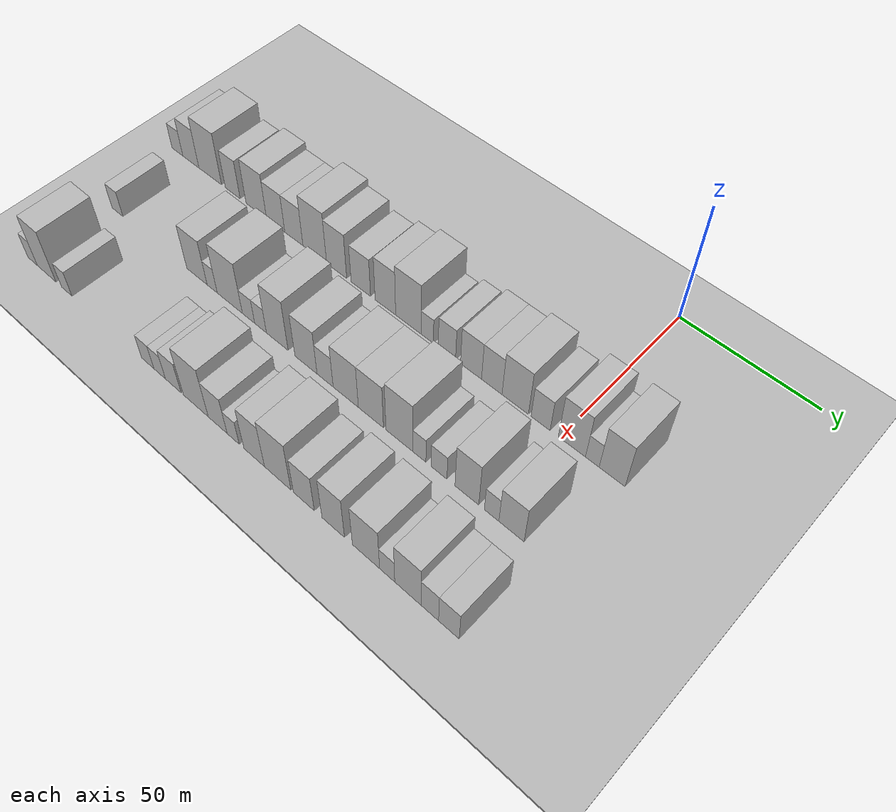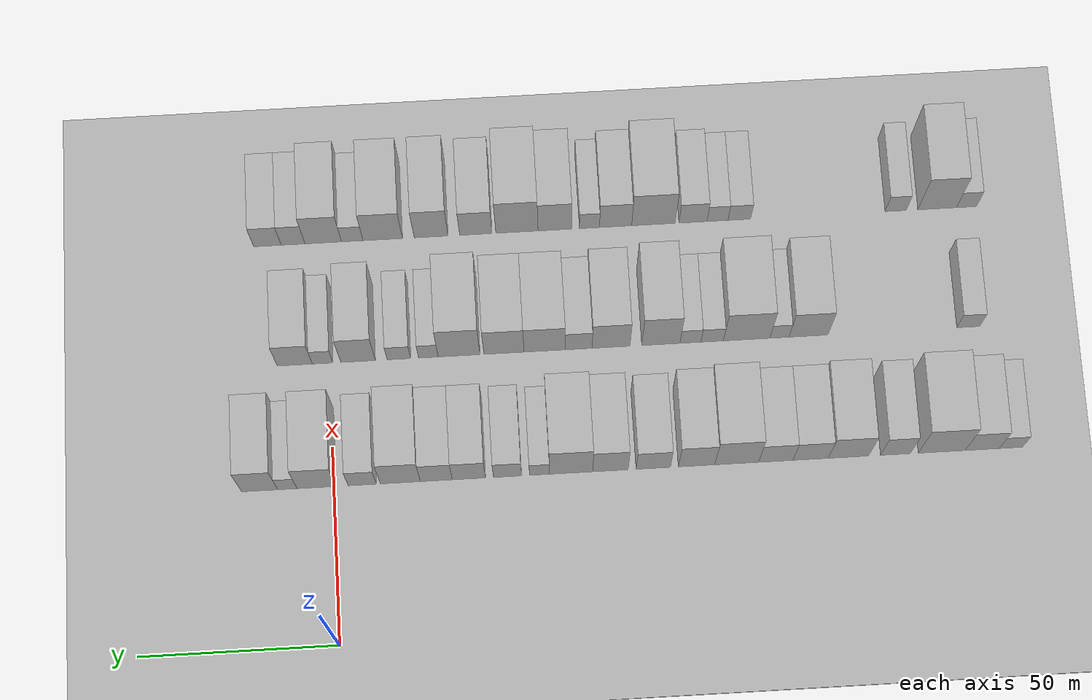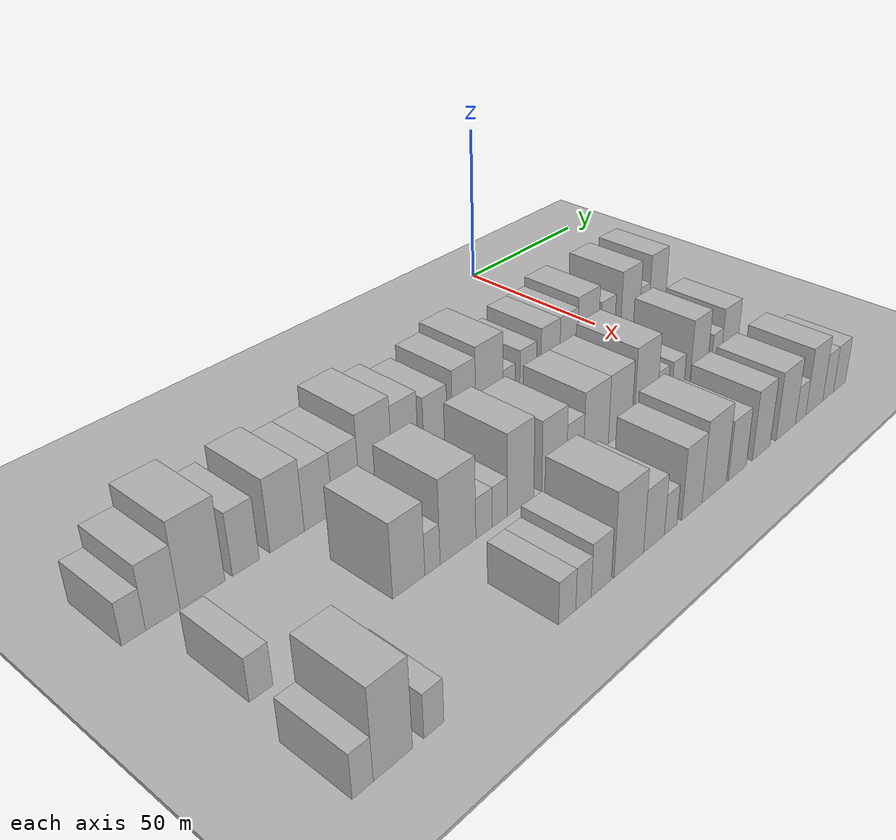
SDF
<sdf version="1.6">
 <world name="default">
  <include><name>ground_plane_1</name><uri>model://HANNAS_ground_plane</uri></include>
  <include>
   <name>ground_plane_2</name>
   <uri>model://HANNAS_ground_plane</uri>
   <pose>100 0 0  0 0 0</pose>
  </include>
  <model name="building_17">
   <static>1</static>
   <pose>50.0000 -170.2554 0 0.000000 0.000000 0.000000</pose>
   <link name="link">
    <pose>0 0 6.00 0 0 0</pose>
    <collision name="collision"><geometry><box><size>20.0000 5.8816 12.0000</size></box></geometry></collision>
    <visual name="visual">
     <cast_shadows>0</cast_shadows>
     <geometry><box><size>20.0000 5.8816 12.0000</size></box></geometry>
     <material>
      <script>
       <uri>model://HANNAS_wall/materials/scripts</uri>
       <uri>model://HANNAS_wall/materials/textures</uri>
       <name>vrc/HANNAS_wall</name>
      </script>
     </material>
    </visual>
   </link>
  </model>
  <model name="building_18">
   <static>1</static>
   <pose>50.0000 -163.0106 0 0.000000 0.000000 0.000000</pose>
   <link name="link">
    <pose>0 0 9.00 0 0 0</pose>
    <collision name="collision"><geometry><box><size>20.0000 8.6079 18.0000</size></box></geometry></collision>
    <visual name="visual">
     <cast_shadows>0</cast_shadows>
     <geometry><box><size>20.0000 8.6079 18.0000</size></box></geometry>
     <material>
      <script>
       <uri>model://HANNAS_wall/materials/scripts</uri>
       <uri>model://HANNAS_wall/materials/textures</uri>
       <name>vrc/HANNAS_wall</name>
      </script>
     </material>
    </visual>
   </link>
  </model>
  <model name="building_19">
   <static>1</static>
   <pose>50.0000 -152.7839 0 0.000000 0.000000 0.000000</pose>
   <link name="link">
    <pose>0 0 12.00 0 0 0</pose>
    <collision name="collision"><geometry><box><size>20.0000 11.8455 24.0000</size></box></geometry></collision>
    <visual name="visual">
     <cast_shadows>0</cast_shadows>
     <geometry><box><size>20.0000 11.8455 24.0000</size></box></geometry>
     <material>
      <script>
       <uri>model://HANNAS_wall/materials/scripts</uri>
       <uri>model://HANNAS_wall/materials/textures</uri>
       <name>vrc/HANNAS_wall</name>
      </script>
     </material>
    </visual>
   </link>
  </model>
  <model name="building_20">
   <static>1</static>
   <pose>50.0000 -141.0878 0 0.000000 0.000000 0.000000</pose>
   <link name="link">
    <pose>0 0 9.00 0 0 0</pose>
    <collision name="collision"><geometry><box><size>20.0000 7.5467 18.0000</size></box></geometry></collision>
    <visual name="visual">
     <cast_shadows>0</cast_shadows>
     <geometry><box><size>20.0000 7.5467 18.0000</size></box></geometry>
     <material>
      <script>
       <uri>model://HANNAS_wall/materials/scripts</uri>
       <uri>model://HANNAS_wall/materials/textures</uri>
       <name>vrc/HANNAS_wall</name>
      </script>
     </material>
    </visual>
   </link>
  </model>
  <model name="building_21">
   <static>1</static>
   <pose>50.0000 -129.2175 0 0.000000 0.000000 0.000000</pose>
   <link name="link">
    <pose>0 0 10.50 0 0 0</pose>
    <collision name="collision"><geometry><box><size>20.0000 10.1940 21.0000</size></box></geometry></collision>
    <visual name="visual">
     <cast_shadows>0</cast_shadows>
     <geometry><box><size>20.0000 10.1940 21.0000</size></box></geometry>
     <material>
      <script>
       <uri>model://HANNAS_wall/materials/scripts</uri>
       <uri>model://HANNAS_wall/materials/textures</uri>
       <name>vrc/HANNAS_wall</name>
      </script>
     </material>
    </visual>
   </link>
  </model>
  <model name="building_22">
   <static>1</static>
   <pose>50.0000 -119.6729 0 0.000000 0.000000 0.000000</pose>
   <link name="link">
    <pose>0 0 9.00 0 0 0</pose>
    <collision name="collision"><geometry><box><size>20.0000 8.8952 18.0000</size></box></geometry></collision>
    <visual name="visual">
     <cast_shadows>0</cast_shadows>
     <geometry><box><size>20.0000 8.8952 18.0000</size></box></geometry>
     <material>
      <script>
       <uri>model://HANNAS_wall/materials/scripts</uri>
       <uri>model://HANNAS_wall/materials/textures</uri>
       <name>vrc/HANNAS_wall</name>
      </script>
     </material>
    </visual>
   </link>
  </model>
  <model name="building_23">
   <static>1</static>
   <pose>50.0000 -110.8884 0 0.000000 0.000000 0.000000</pose>
   <link name="link">
    <pose>0 0 9.00 0 0 0</pose>
    <collision name="collision"><geometry><box><size>20.0000 8.6737 18.0000</size></box></geometry></collision>
    <visual name="visual">
     <cast_shadows>0</cast_shadows>
     <geometry><box><size>20.0000 8.6737 18.0000</size></box></geometry>
     <material>
      <script>
       <uri>model://HANNAS_wall/materials/scripts</uri>
       <uri>model://HANNAS_wall/materials/textures</uri>
       <name>vrc/HANNAS_wall</name>
      </script>
     </material>
    </visual>
   </link>
  </model>
  <model name="building_24">
   <static>1</static>
   <pose>50.0000 -101.0242 0 0.000000 0.000000 0.000000</pose>
   <link name="link">
    <pose>0 0 12.00 0 0 0</pose>
    <collision name="collision"><geometry><box><size>20.0000 11.0546 24.0000</size></box></geometry></collision>
    <visual name="visual">
     <cast_shadows>0</cast_shadows>
     <geometry><box><size>20.0000 11.0546 24.0000</size></box></geometry>
     <material>
      <script>
       <uri>model://HANNAS_wall/materials/scripts</uri>
       <uri>model://HANNAS_wall/materials/textures</uri>
       <name>vrc/HANNAS_wall</name>
      </script>
     </material>
    </visual>
   </link>
  </model>
  <model name="building_25">
   <static>1</static>
   <pose>50.0000 -90.9319 0 0.000000 0.000000 0.000000</pose>
   <link name="link">
    <pose>0 0 10.50 0 0 0</pose>
    <collision name="collision"><geometry><box><size>20.0000 9.1301 21.0000</size></box></geometry></collision>
    <visual name="visual">
     <cast_shadows>0</cast_shadows>
     <geometry><box><size>20.0000 9.1301 21.0000</size></box></geometry>
     <material>
      <script>
       <uri>model://HANNAS_wall/materials/scripts</uri>
       <uri>model://HANNAS_wall/materials/textures</uri>
       <name>vrc/HANNAS_wall</name>
      </script>
     </material>
    </visual>
   </link>
  </model>
  <model name="building_26">
   <static>1</static>
   <pose>50.0000 -80.0476 0 0.000000 0.000000 0.000000</pose>
   <link name="link">
    <pose>0 0 9.00 0 0 0</pose>
    <collision name="collision"><geometry><box><size>20.0000 8.6386 18.0000</size></box></geometry></collision>
    <visual name="visual">
     <cast_shadows>0</cast_shadows>
     <geometry><box><size>20.0000 8.6386 18.0000</size></box></geometry>
     <material>
      <script>
       <uri>model://HANNAS_wall/materials/scripts</uri>
       <uri>model://HANNAS_wall/materials/textures</uri>
       <name>vrc/HANNAS_wall</name>
      </script>
     </material>
    </visual>
   </link>
  </model>
  <model name="building_27">
   <static>1</static>
   <pose>50.0000 -69.2819 0 0.000000 0.000000 0.000000</pose>
   <link name="link">
    <pose>0 0 10.50 0 0 0</pose>
    <collision name="collision"><geometry><box><size>20.0000 8.8927 21.0000</size></box></geometry></collision>
    <visual name="visual">
     <cast_shadows>0</cast_shadows>
     <geometry><box><size>20.0000 8.8927 21.0000</size></box></geometry>
     <material>
      <script>
       <uri>model://HANNAS_wall/materials/scripts</uri>
       <uri>model://HANNAS_wall/materials/textures</uri>
       <name>vrc/HANNAS_wall</name>
      </script>
     </material>
    </visual>
   </link>
  </model>
  <model name="building_28">
   <static>1</static>
   <pose>50.0000 -59.4083 0 0.000000 0.000000 0.000000</pose>
   <link name="link">
    <pose>0 0 12.00 0 0 0</pose>
    <collision name="collision"><geometry><box><size>20.0000 10.8546 24.0000</size></box></geometry></collision>
    <visual name="visual">
     <cast_shadows>0</cast_shadows>
     <geometry><box><size>20.0000 10.8546 24.0000</size></box></geometry>
     <material>
      <script>
       <uri>model://HANNAS_wall/materials/scripts</uri>
       <uri>model://HANNAS_wall/materials/textures</uri>
       <name>vrc/HANNAS_wall</name>
      </script>
     </material>
    </visual>
   </link>
  </model>
  <model name="building_29">
   <static>1</static>
   <pose>50.0000 -51.4689 0 0.000000 0.000000 0.000000</pose>
   <link name="link">
    <pose>0 0 6.00 0 0 0</pose>
    <collision name="collision"><geometry><box><size>20.0000 5.0243 12.0000</size></box></geometry></collision>
    <visual name="visual">
     <cast_shadows>0</cast_shadows>
     <geometry><box><size>20.0000 5.0243 12.0000</size></box></geometry>
     <material>
      <script>
       <uri>model://HANNAS_wall/materials/scripts</uri>
       <uri>model://HANNAS_wall/materials/textures</uri>
       <name>vrc/HANNAS_wall</name>
      </script>
     </material>
    </visual>
   </link>
  </model>
  <model name="building_30">
   <static>1</static>
   <pose>50.0000 -43.4374 0 0.000000 0.000000 0.000000</pose>
   <link name="link">
    <pose>0 0 7.50 0 0 0</pose>
    <collision name="collision"><geometry><box><size>20.0000 7.0387 15.0000</size></box></geometry></collision>
    <visual name="visual">
     <cast_shadows>0</cast_shadows>
     <geometry><box><size>20.0000 7.0387 15.0000</size></box></geometry>
     <material>
      <script>
       <uri>model://HANNAS_wall/materials/scripts</uri>
       <uri>model://HANNAS_wall/materials/textures</uri>
       <name>vrc/HANNAS_wall</name>
      </script>
     </material>
    </visual>
   </link>
  </model>
  <model name="building_31">
   <static>1</static>
   <pose>50.0000 -33.7445 0 0.000000 0.000000 0.000000</pose>
   <link name="link">
    <pose>0 0 9.00 0 0 0</pose>
    <collision name="collision"><geometry><box><size>20.0000 8.3470 18.0000</size></box></geometry></collision>
    <visual name="visual">
     <cast_shadows>0</cast_shadows>
     <geometry><box><size>20.0000 8.3470 18.0000</size></box></geometry>
     <material>
      <script>
       <uri>model://HANNAS_wall/materials/scripts</uri>
       <uri>model://HANNAS_wall/materials/textures</uri>
       <name>vrc/HANNAS_wall</name>
      </script>
     </material>
    </visual>
   </link>
  </model>
  <model name="building_32">
   <static>1</static>
   <pose>50.0000 -25.5704 0 0.000000 0.000000 0.000000</pose>
   <link name="link">
    <pose>0 0 9.00 0 0 0</pose>
    <collision name="collision"><geometry><box><size>20.0000 8.0010 18.0000</size></box></geometry></collision>
    <visual name="visual">
     <cast_shadows>0</cast_shadows>
     <geometry><box><size>20.0000 8.0010 18.0000</size></box></geometry>
     <material>
      <script>
       <uri>model://HANNAS_wall/materials/scripts</uri>
       <uri>model://HANNAS_wall/materials/textures</uri>
       <name>vrc/HANNAS_wall</name>
      </script>
     </material>
    </visual>
   </link>
  </model>
  <model name="building_33">
   <static>1</static>
   <pose>50.0000 -16.5483 0 0.000000 0.000000 0.000000</pose>
   <link name="link">
    <pose>0 0 10.50 0 0 0</pose>
    <collision name="collision"><geometry><box><size>20.0000 10.0432 21.0000</size></box></geometry></collision>
    <visual name="visual">
     <cast_shadows>0</cast_shadows>
     <geometry><box><size>20.0000 10.0432 21.0000</size></box></geometry>
     <material>
      <script>
       <uri>model://HANNAS_wall/materials/scripts</uri>
       <uri>model://HANNAS_wall/materials/textures</uri>
       <name>vrc/HANNAS_wall</name>
      </script>
     </material>
    </visual>
   </link>
  </model>
  <model name="building_34">
   <static>1</static>
   <pose>50.0000 -6.9915 0 0.000000 0.000000 0.000000</pose>
   <link name="link">
    <pose>0 0 7.50 0 0 0</pose>
    <collision name="collision"><geometry><box><size>20.0000 7.0704 15.0000</size></box></geometry></collision>
    <visual name="visual">
     <cast_shadows>0</cast_shadows>
     <geometry><box><size>20.0000 7.0704 15.0000</size></box></geometry>
     <material>
      <script>
       <uri>model://HANNAS_wall/materials/scripts</uri>
       <uri>model://HANNAS_wall/materials/textures</uri>
       <name>vrc/HANNAS_wall</name>
      </script>
     </material>
    </visual>
   </link>
  </model>
  <model name="building_35">
   <static>1</static>
   <pose>50.0000 4.4406 0 0.000000 0.000000 0.000000</pose>
   <link name="link">
    <pose>0 0 10.50 0 0 0</pose>
    <collision name="collision"><geometry><box><size>20.0000 9.7938 21.0000</size></box></geometry></collision>
    <visual name="visual">
     <cast_shadows>0</cast_shadows>
     <geometry><box><size>20.0000 9.7938 21.0000</size></box></geometry>
     <material>
      <script>
       <uri>model://HANNAS_wall/materials/scripts</uri>
       <uri>model://HANNAS_wall/materials/textures</uri>
       <name>vrc/HANNAS_wall</name>
      </script>
     </material>
    </visual>
   </link>
  </model>
  <model name="building_36">
   <static>1</static>
   <pose>50.0000 11.7586 0 0.000000 0.000000 0.000000</pose>
   <link name="link">
    <pose>0 0 6.00 0 0 0</pose>
    <collision name="collision"><geometry><box><size>20.0000 4.8423 12.0000</size></box></geometry></collision>
    <visual name="visual">
     <cast_shadows>0</cast_shadows>
     <geometry><box><size>20.0000 4.8423 12.0000</size></box></geometry>
     <material>
      <script>
       <uri>model://HANNAS_wall/materials/scripts</uri>
       <uri>model://HANNAS_wall/materials/textures</uri>
       <name>vrc/HANNAS_wall</name>
      </script>
     </material>
    </visual>
   </link>
  </model>
  <model name="building_37">
   <static>1</static>
   <pose>50.0000 18.6964 0 0.000000 0.000000 0.000000</pose>
   <link name="link">
    <pose>0 0 10.50 0 0 0</pose>
    <collision name="collision"><geometry><box><size>20.0000 9.0333 21.0000</size></box></geometry></collision>
    <visual name="visual">
     <cast_shadows>0</cast_shadows>
     <geometry><box><size>20.0000 9.0333 21.0000</size></box></geometry>
     <material>
      <script>
       <uri>model://HANNAS_wall/materials/scripts</uri>
       <uri>model://HANNAS_wall/materials/textures</uri>
       <name>vrc/HANNAS_wall</name>
      </script>
     </material>
    </visual>
   </link>
  </model>
  <model name="building_90">
   <static>1</static>
   <pose>82.0000 -162.6752 0 0.000000 0.000000 0.000000</pose>
   <link name="link">
    <pose>0 0 6.00 0 0 0</pose>
    <collision name="collision"><geometry><box><size>20.0000 5.8842 12.0000</size></box></geometry></collision>
    <visual name="visual">
     <cast_shadows>0</cast_shadows>
     <geometry><box><size>20.0000 5.8842 12.0000</size></box></geometry>
     <material>
      <script>
       <uri>model://HANNAS_wall/materials/scripts</uri>
       <uri>model://HANNAS_wall/materials/textures</uri>
       <name>vrc/HANNAS_wall</name>
      </script>
     </material>
    </visual>
   </link>
  </model>
  <model name="building_91">
   <static>1</static>
   <pose>82.0000 -121.8020 0 0.000000 0.000000 0.000000</pose>
   <link name="link">
    <pose>0 0 10.50 0 0 0</pose>
    <collision name="collision"><geometry><box><size>20.0000 9.9540 21.0000</size></box></geometry></collision>
    <visual name="visual">
     <cast_shadows>0</cast_shadows>
     <geometry><box><size>20.0000 9.9540 21.0000</size></box></geometry>
     <material>
      <script>
       <uri>model://HANNAS_wall/materials/scripts</uri>
       <uri>model://HANNAS_wall/materials/textures</uri>
       <name>vrc/HANNAS_wall</name>
      </script>
     </material>
    </visual>
   </link>
  </model>
  <model name="building_92">
   <static>1</static>
   <pose>82.0000 -114.3907 0 0.000000 0.000000 0.000000</pose>
   <link name="link">
    <pose>0 0 6.00 0 0 0</pose>
    <collision name="collision"><geometry><box><size>20.0000 4.8687 12.0000</size></box></geometry></collision>
    <visual name="visual">
     <cast_shadows>0</cast_shadows>
     <geometry><box><size>20.0000 4.8687 12.0000</size></box></geometry>
     <material>
      <script>
       <uri>model://HANNAS_wall/materials/scripts</uri>
       <uri>model://HANNAS_wall/materials/textures</uri>
       <name>vrc/HANNAS_wall</name>
      </script>
     </material>
    </visual>
   </link>
  </model>
  <model name="building_93">
   <static>1</static>
   <pose>82.0000 -106.0069 0 0.000000 0.000000 0.000000</pose>
   <link name="link">
    <pose>0 0 12.00 0 0 0</pose>
    <collision name="collision"><geometry><box><size>20.0000 11.8988 24.0000</size></box></geometry></collision>
    <visual name="visual">
     <cast_shadows>0</cast_shadows>
     <geometry><box><size>20.0000 11.8988 24.0000</size></box></geometry>
     <material>
      <script>
       <uri>model://HANNAS_wall/materials/scripts</uri>
       <uri>model://HANNAS_wall/materials/textures</uri>
       <name>vrc/HANNAS_wall</name>
      </script>
     </material>
    </visual>
   </link>
  </model>
  <model name="building_94">
   <static>1</static>
   <pose>82.0000 -97.2137 0 0.000000 0.000000 0.000000</pose>
   <link name="link">
    <pose>0 0 6.00 0 0 0</pose>
    <collision name="collision"><geometry><box><size>20.0000 5.6877 12.0000</size></box></geometry></collision>
    <visual name="visual">
     <cast_shadows>0</cast_shadows>
     <geometry><box><size>20.0000 5.6877 12.0000</size></box></geometry>
     <material>
      <script>
       <uri>model://HANNAS_wall/materials/scripts</uri>
       <uri>model://HANNAS_wall/materials/textures</uri>
       <name>vrc/HANNAS_wall</name>
      </script>
     </material>
    </visual>
   </link>
  </model>
  <model name="building_95">
   <static>1</static>
   <pose>82.0000 -91.6978 0 0.000000 0.000000 0.000000</pose>
   <link name="link">
    <pose>0 0 6.00 0 0 0</pose>
    <collision name="collision"><geometry><box><size>20.0000 5.3440 12.0000</size></box></geometry></collision>
    <visual name="visual">
     <cast_shadows>0</cast_shadows>
     <geometry><box><size>20.0000 5.3440 12.0000</size></box></geometry>
     <material>
      <script>
       <uri>model://HANNAS_wall/materials/scripts</uri>
       <uri>model://HANNAS_wall/materials/textures</uri>
       <name>vrc/HANNAS_wall</name>
      </script>
     </material>
    </visual>
   </link>
  </model>
  <model name="building_96">
   <static>1</static>
   <pose>82.0000 -84.1527 0 0.000000 0.000000 0.000000</pose>
   <link name="link">
    <pose>0 0 12.00 0 0 0</pose>
    <collision name="collision"><geometry><box><size>20.0000 9.7463 24.0000</size></box></geometry></collision>
    <visual name="visual">
     <cast_shadows>0</cast_shadows>
     <geometry><box><size>20.0000 9.7463 24.0000</size></box></geometry>
     <material>
      <script>
       <uri>model://HANNAS_wall/materials/scripts</uri>
       <uri>model://HANNAS_wall/materials/textures</uri>
       <name>vrc/HANNAS_wall</name>
      </script>
     </material>
    </visual>
   </link>
  </model>
  <model name="building_97">
   <static>1</static>
   <pose>82.0000 -71.4663 0 0.000000 0.000000 0.000000</pose>
   <link name="link">
    <pose>0 0 10.50 0 0 0</pose>
    <collision name="collision"><geometry><box><size>20.0000 9.6265 21.0000</size></box></geometry></collision>
    <visual name="visual">
     <cast_shadows>0</cast_shadows>
     <geometry><box><size>20.0000 9.6265 21.0000</size></box></geometry>
     <material>
      <script>
       <uri>model://HANNAS_wall/materials/scripts</uri>
       <uri>model://HANNAS_wall/materials/textures</uri>
       <name>vrc/HANNAS_wall</name>
      </script>
     </material>
    </visual>
   </link>
  </model>
  <model name="building_98">
   <static>1</static>
   <pose>82.0000 -63.2266 0 0.000000 0.000000 0.000000</pose>
   <link name="link">
    <pose>0 0 7.50 0 0 0</pose>
    <collision name="collision"><geometry><box><size>20.0000 6.8529 15.0000</size></box></geometry></collision>
    <visual name="visual">
     <cast_shadows>0</cast_shadows>
     <geometry><box><size>20.0000 6.8529 15.0000</size></box></geometry>
     <material>
      <script>
       <uri>model://HANNAS_wall/materials/scripts</uri>
       <uri>model://HANNAS_wall/materials/textures</uri>
       <name>vrc/HANNAS_wall</name>
      </script>
     </material>
    </visual>
   </link>
  </model>
  <model name="building_99">
   <static>1</static>
   <pose>82.0000 -54.5525 0 0.000000 0.000000 0.000000</pose>
   <link name="link">
    <pose>0 0 10.50 0 0 0</pose>
    <collision name="collision"><geometry><box><size>20.0000 10.4952 21.0000</size></box></geometry></collision>
    <visual name="visual">
     <cast_shadows>0</cast_shadows>
     <geometry><box><size>20.0000 10.4952 21.0000</size></box></geometry>
     <material>
      <script>
       <uri>model://HANNAS_wall/materials/scripts</uri>
       <uri>model://HANNAS_wall/materials/textures</uri>
       <name>vrc/HANNAS_wall</name>
      </script>
     </material>
    </visual>
   </link>
  </model>
  <model name="building_100">
   <static>1</static>
   <pose>82.0000 -44.2091 0 0.000000 0.000000 0.000000</pose>
   <link name="link">
    <pose>0 0 10.50 0 0 0</pose>
    <collision name="collision"><geometry><box><size>20.0000 10.1915 21.0000</size></box></geometry></collision>
    <visual name="visual">
     <cast_shadows>0</cast_shadows>
     <geometry><box><size>20.0000 10.1915 21.0000</size></box></geometry>
     <material>
      <script>
       <uri>model://HANNAS_wall/materials/scripts</uri>
       <uri>model://HANNAS_wall/materials/textures</uri>
       <name>vrc/HANNAS_wall</name>
      </script>
     </material>
    </visual>
   </link>
  </model>
  <model name="building_101">
   <static>1</static>
   <pose>82.0000 -32.7987 0 0.000000 0.000000 0.000000</pose>
   <link name="link">
    <pose>0 0 12.00 0 0 0</pose>
    <collision name="collision"><geometry><box><size>20.0000 10.6295 24.0000</size></box></geometry></collision>
    <visual name="visual">
     <cast_shadows>0</cast_shadows>
     <geometry><box><size>20.0000 10.6295 24.0000</size></box></geometry>
     <material>
      <script>
       <uri>model://HANNAS_wall/materials/scripts</uri>
       <uri>model://HANNAS_wall/materials/textures</uri>
       <name>vrc/HANNAS_wall</name>
      </script>
     </material>
    </visual>
   </link>
  </model>
  <model name="building_102">
   <static>1</static>
   <pose>82.0000 -24.9941 0 0.000000 0.000000 0.000000</pose>
   <link name="link">
    <pose>0 0 6.00 0 0 0</pose>
    <collision name="collision"><geometry><box><size>20.0000 4.9796 12.0000</size></box></geometry></collision>
    <visual name="visual">
     <cast_shadows>0</cast_shadows>
     <geometry><box><size>20.0000 4.9796 12.0000</size></box></geometry>
     <material>
      <script>
       <uri>model://HANNAS_wall/materials/scripts</uri>
       <uri>model://HANNAS_wall/materials/textures</uri>
       <name>vrc/HANNAS_wall</name>
      </script>
     </material>
    </visual>
   </link>
  </model>
  <model name="building_103">
   <static>1</static>
   <pose>82.0000 -17.5115 0 0.000000 0.000000 0.000000</pose>
   <link name="link">
    <pose>0 0 6.00 0 0 0</pose>
    <collision name="collision"><geometry><box><size>20.0000 5.9856 12.0000</size></box></geometry></collision>
    <visual name="visual">
     <cast_shadows>0</cast_shadows>
     <geometry><box><size>20.0000 5.9856 12.0000</size></box></geometry>
     <material>
      <script>
       <uri>model://HANNAS_wall/materials/scripts</uri>
       <uri>model://HANNAS_wall/materials/textures</uri>
       <name>vrc/HANNAS_wall</name>
      </script>
     </material>
    </visual>
   </link>
  </model>
  <model name="building_104">
   <static>1</static>
   <pose>82.0000 -7.1306 0 0.000000 0.000000 0.000000</pose>
   <link name="link">
    <pose>0 0 10.50 0 0 0</pose>
    <collision name="collision"><geometry><box><size>20.0000 8.7762 21.0000</size></box></geometry></collision>
    <visual name="visual">
     <cast_shadows>0</cast_shadows>
     <geometry><box><size>20.0000 8.7762 21.0000</size></box></geometry>
     <material>
      <script>
       <uri>model://HANNAS_wall/materials/scripts</uri>
       <uri>model://HANNAS_wall/materials/textures</uri>
       <name>vrc/HANNAS_wall</name>
      </script>
     </material>
    </visual>
   </link>
  </model>
  <model name="building_105">
   <static>1</static>
   <pose>82.0000 1.8688 0 0.000000 0.000000 0.000000</pose>
   <link name="link">
    <pose>0 0 6.00 0 0 0</pose>
    <collision name="collision"><geometry><box><size>20.0000 5.2227 12.0000</size></box></geometry></collision>
    <visual name="visual">
     <cast_shadows>0</cast_shadows>
     <geometry><box><size>20.0000 5.2227 12.0000</size></box></geometry>
     <material>
      <script>
       <uri>model://HANNAS_wall/materials/scripts</uri>
       <uri>model://HANNAS_wall/materials/textures</uri>
       <name>vrc/HANNAS_wall</name>
      </script>
     </material>
    </visual>
   </link>
  </model>
  <model name="building_106">
   <static>1</static>
   <pose>82.0000 8.9298 0 0.000000 0.000000 0.000000</pose>
   <link name="link">
    <pose>0 0 9.00 0 0 0</pose>
    <collision name="collision"><geometry><box><size>20.0000 8.8992 18.0000</size></box></geometry></collision>
    <visual name="visual">
     <cast_shadows>0</cast_shadows>
     <geometry><box><size>20.0000 8.8992 18.0000</size></box></geometry>
     <material>
      <script>
       <uri>model://HANNAS_wall/materials/scripts</uri>
       <uri>model://HANNAS_wall/materials/textures</uri>
       <name>vrc/HANNAS_wall</name>
      </script>
     </material>
    </visual>
   </link>
  </model>
  <model name="building_170">
   <static>1</static>
   <pose>114.0000 -165.4361 0 0.000000 0.000000 0.000000</pose>
   <link name="link">
    <pose>0 0 6.00 0 0 0</pose>
    <collision name="collision"><geometry><box><size>20.0000 5.1891 12.0000</size></box></geometry></collision>
    <visual name="visual">
     <cast_shadows>0</cast_shadows>
     <geometry><box><size>20.0000 5.1891 12.0000</size></box></geometry>
     <material>
      <script>
       <uri>model://HANNAS_wall/materials/scripts</uri>
       <uri>model://HANNAS_wall/materials/textures</uri>
       <name>vrc/HANNAS_wall</name>
      </script>
     </material>
    </visual>
   </link>
  </model>
  <model name="building_171">
   <static>1</static>
   <pose>114.0000 -157.8251 0 0.000000 0.000000 0.000000</pose>
   <link name="link">
    <pose>0 0 12.00 0 0 0</pose>
    <collision name="collision"><geometry><box><size>20.0000 10.0328 24.0000</size></box></geometry></collision>
    <visual name="visual">
     <cast_shadows>0</cast_shadows>
     <geometry><box><size>20.0000 10.0328 24.0000</size></box></geometry>
     <material>
      <script>
       <uri>model://HANNAS_wall/materials/scripts</uri>
       <uri>model://HANNAS_wall/materials/textures</uri>
       <name>vrc/HANNAS_wall</name>
      </script>
     </material>
    </visual>
   </link>
  </model>
  <model name="building_172">
   <static>1</static>
   <pose>114.0000 -147.0705 0 0.000000 0.000000 0.000000</pose>
   <link name="link">
    <pose>0 0 6.00 0 0 0</pose>
    <collision name="collision"><geometry><box><size>20.0000 5.4764 12.0000</size></box></geometry></collision>
    <visual name="visual">
     <cast_shadows>0</cast_shadows>
     <geometry><box><size>20.0000 5.4764 12.0000</size></box></geometry>
     <material>
      <script>
       <uri>model://HANNAS_wall/materials/scripts</uri>
       <uri>model://HANNAS_wall/materials/textures</uri>
       <name>vrc/HANNAS_wall</name>
      </script>
     </material>
    </visual>
   </link>
  </model>
  <model name="building_173">
   <static>1</static>
   <pose>114.0000 -106.5751 0 0.000000 0.000000 0.000000</pose>
   <link name="link">
    <pose>0 0 6.00 0 0 0</pose>
    <collision name="collision"><geometry><box><size>20.0000 5.8382 12.0000</size></box></geometry></collision>
    <visual name="visual">
     <cast_shadows>0</cast_shadows>
     <geometry><box><size>20.0000 5.8382 12.0000</size></box></geometry>
     <material>
      <script>
       <uri>model://HANNAS_wall/materials/scripts</uri>
       <uri>model://HANNAS_wall/materials/textures</uri>
       <name>vrc/HANNAS_wall</name>
      </script>
     </material>
    </visual>
   </link>
  </model>
  <model name="building_174">
   <static>1</static>
   <pose>114.0000 -100.9478 0 0.000000 0.000000 0.000000</pose>
   <link name="link">
    <pose>0 0 6.00 0 0 0</pose>
    <collision name="collision"><geometry><box><size>20.0000 5.4163 12.0000</size></box></geometry></collision>
    <visual name="visual">
     <cast_shadows>0</cast_shadows>
     <geometry><box><size>20.0000 5.4163 12.0000</size></box></geometry>
     <material>
      <script>
       <uri>model://HANNAS_wall/materials/scripts</uri>
       <uri>model://HANNAS_wall/materials/textures</uri>
       <name>vrc/HANNAS_wall</name>
      </script>
     </material>
    </visual>
   </link>
  </model>
  <model name="building_175">
   <static>1</static>
   <pose>114.0000 -94.6182 0 0.000000 0.000000 0.000000</pose>
   <link name="link">
    <pose>0 0 7.50 0 0 0</pose>
    <collision name="collision"><geometry><box><size>20.0000 7.2430 15.0000</size></box></geometry></collision>
    <visual name="visual">
     <cast_shadows>0</cast_shadows>
     <geometry><box><size>20.0000 7.2430 15.0000</size></box></geometry>
     <material>
      <script>
       <uri>model://HANNAS_wall/materials/scripts</uri>
       <uri>model://HANNAS_wall/materials/textures</uri>
       <name>vrc/HANNAS_wall</name>
      </script>
     </material>
    </visual>
   </link>
  </model>
  <model name="building_176">
   <static>1</static>
   <pose>114.0000 -84.3965 0 0.000000 0.000000 0.000000</pose>
   <link name="link">
    <pose>0 0 12.00 0 0 0</pose>
    <collision name="collision"><geometry><box><size>20.0000 11.2004 24.0000</size></box></geometry></collision>
    <visual name="visual">
     <cast_shadows>0</cast_shadows>
     <geometry><box><size>20.0000 11.2004 24.0000</size></box></geometry>
     <material>
      <script>
       <uri>model://HANNAS_wall/materials/scripts</uri>
       <uri>model://HANNAS_wall/materials/textures</uri>
       <name>vrc/HANNAS_wall</name>
      </script>
     </material>
    </visual>
   </link>
  </model>
  <model name="building_177">
   <static>1</static>
   <pose>114.0000 -74.6478 0 0.000000 0.000000 0.000000</pose>
   <link name="link">
    <pose>0 0 9.00 0 0 0</pose>
    <collision name="collision"><geometry><box><size>20.0000 8.2970 18.0000</size></box></geometry></collision>
    <visual name="visual">
     <cast_shadows>0</cast_shadows>
     <geometry><box><size>20.0000 8.2970 18.0000</size></box></geometry>
     <material>
      <script>
       <uri>model://HANNAS_wall/materials/scripts</uri>
       <uri>model://HANNAS_wall/materials/textures</uri>
       <name>vrc/HANNAS_wall</name>
      </script>
     </material>
    </visual>
   </link>
  </model>
  <model name="building_178">
   <static>1</static>
   <pose>114.0000 -67.9036 0 0.000000 0.000000 0.000000</pose>
   <link name="link">
    <pose>0 0 6.00 0 0 0</pose>
    <collision name="collision"><geometry><box><size>20.0000 5.1914 12.0000</size></box></geometry></collision>
    <visual name="visual">
     <cast_shadows>0</cast_shadows>
     <geometry><box><size>20.0000 5.1914 12.0000</size></box></geometry>
     <material>
      <script>
       <uri>model://HANNAS_wall/materials/scripts</uri>
       <uri>model://HANNAS_wall/materials/textures</uri>
       <name>vrc/HANNAS_wall</name>
      </script>
     </material>
    </visual>
   </link>
  </model>
  <model name="building_179">
   <static>1</static>
   <pose>114.0000 -58.9770 0 0.000000 0.000000 0.000000</pose>
   <link name="link">
    <pose>0 0 10.50 0 0 0</pose>
    <collision name="collision"><geometry><box><size>20.0000 8.6619 21.0000</size></box></geometry></collision>
    <visual name="visual">
     <cast_shadows>0</cast_shadows>
     <geometry><box><size>20.0000 8.6619 21.0000</size></box></geometry>
     <material>
      <script>
       <uri>model://HANNAS_wall/materials/scripts</uri>
       <uri>model://HANNAS_wall/materials/textures</uri>
       <name>vrc/HANNAS_wall</name>
      </script>
     </material>
    </visual>
   </link>
  </model>
  <model name="building_180">
   <static>1</static>
   <pose>114.0000 -49.2096 0 0.000000 0.000000 0.000000</pose>
   <link name="link">
    <pose>0 0 12.00 0 0 0</pose>
    <collision name="collision"><geometry><box><size>20.0000 10.8729 24.0000</size></box></geometry></collision>
    <visual name="visual">
     <cast_shadows>0</cast_shadows>
     <geometry><box><size>20.0000 10.8729 24.0000</size></box></geometry>
     <material>
      <script>
       <uri>model://HANNAS_wall/materials/scripts</uri>
       <uri>model://HANNAS_wall/materials/textures</uri>
       <name>vrc/HANNAS_wall</name>
      </script>
     </material>
    </visual>
   </link>
  </model>
  <model name="building_181">
   <static>1</static>
   <pose>114.0000 -38.6105 0 0.000000 0.000000 0.000000</pose>
   <link name="link">
    <pose>0 0 9.00 0 0 0</pose>
    <collision name="collision"><geometry><box><size>20.0000 8.3252 18.0000</size></box></geometry></collision>
    <visual name="visual">
     <cast_shadows>0</cast_shadows>
     <geometry><box><size>20.0000 8.3252 18.0000</size></box></geometry>
     <material>
      <script>
       <uri>model://HANNAS_wall/materials/scripts</uri>
       <uri>model://HANNAS_wall/materials/textures</uri>
       <name>vrc/HANNAS_wall</name>
      </script>
     </material>
    </visual>
   </link>
  </model>
  <model name="building_182">
   <static>1</static>
   <pose>114.0000 -27.0891 0 0.000000 0.000000 0.000000</pose>
   <link name="link">
    <pose>0 0 10.50 0 0 0</pose>
    <collision name="collision"><geometry><box><size>20.0000 8.7176 21.0000</size></box></geometry></collision>
    <visual name="visual">
     <cast_shadows>0</cast_shadows>
     <geometry><box><size>20.0000 8.7176 21.0000</size></box></geometry>
     <material>
      <script>
       <uri>model://HANNAS_wall/materials/scripts</uri>
       <uri>model://HANNAS_wall/materials/textures</uri>
       <name>vrc/HANNAS_wall</name>
      </script>
     </material>
    </visual>
   </link>
  </model>
  <model name="building_183">
   <static>1</static>
   <pose>114.0000 -14.6523 0 0.000000 0.000000 0.000000</pose>
   <link name="link">
    <pose>0 0 10.50 0 0 0</pose>
    <collision name="collision"><geometry><box><size>20.0000 10.1561 21.0000</size></box></geometry></collision>
    <visual name="visual">
     <cast_shadows>0</cast_shadows>
     <geometry><box><size>20.0000 10.1561 21.0000</size></box></geometry>
     <material>
      <script>
       <uri>model://HANNAS_wall/materials/scripts</uri>
       <uri>model://HANNAS_wall/materials/textures</uri>
       <name>vrc/HANNAS_wall</name>
      </script>
     </material>
    </visual>
   </link>
  </model>
  <model name="building_184">
   <static>1</static>
   <pose>114.0000 -6.8064 0 0.000000 0.000000 0.000000</pose>
   <link name="link">
    <pose>0 0 6.00 0 0 0</pose>
    <collision name="collision"><geometry><box><size>20.0000 5.5355 12.0000</size></box></geometry></collision>
    <visual name="visual">
     <cast_shadows>0</cast_shadows>
     <geometry><box><size>20.0000 5.5355 12.0000</size></box></geometry>
     <material>
      <script>
       <uri>model://HANNAS_wall/materials/scripts</uri>
       <uri>model://HANNAS_wall/materials/textures</uri>
       <name>vrc/HANNAS_wall</name>
      </script>
     </material>
    </visual>
   </link>
  </model>
  <model name="building_185">
   <static>1</static>
   <pose>114.0000 0.6657 0 0.000000 0.000000 0.000000</pose>
   <link name="link">
    <pose>0 0 10.50 0 0 0</pose>
    <collision name="collision"><geometry><box><size>20.0000 9.4088 21.0000</size></box></geometry></collision>
    <visual name="visual">
     <cast_shadows>0</cast_shadows>
     <geometry><box><size>20.0000 9.4088 21.0000</size></box></geometry>
     <material>
      <script>
       <uri>model://HANNAS_wall/materials/scripts</uri>
       <uri>model://HANNAS_wall/materials/textures</uri>
       <name>vrc/HANNAS_wall</name>
      </script>
     </material>
    </visual>
   </link>
  </model>
  <model name="building_186">
   <static>1</static>
   <pose>114.0000 8.4265 0 0.000000 0.000000 0.000000</pose>
   <link name="link">
    <pose>0 0 7.50 0 0 0</pose>
    <collision name="collision"><geometry><box><size>20.0000 6.1127 15.0000</size></box></geometry></collision>
    <visual name="visual">
     <cast_shadows>0</cast_shadows>
     <geometry><box><size>20.0000 6.1127 15.0000</size></box></geometry>
     <material>
      <script>
       <uri>model://HANNAS_wall/materials/scripts</uri>
       <uri>model://HANNAS_wall/materials/textures</uri>
       <name>vrc/HANNAS_wall</name>
      </script>
     </material>
    </visual>
   </link>
  </model>
  <model name="building_187">
   <static>1</static>
   <pose>114.0000 15.0173 0 0.000000 0.000000 0.000000</pose>
   <link name="link">
    <pose>0 0 7.50 0 0 0</pose>
    <collision name="collision"><geometry><box><size>20.0000 7.0689 15.0000</size></box></geometry></collision>
    <visual name="visual">
     <cast_shadows>0</cast_shadows>
     <geometry><box><size>20.0000 7.0689 15.0000</size></box></geometry>
     <material>
      <script>
       <uri>model://HANNAS_wall/materials/scripts</uri>
       <uri>model://HANNAS_wall/materials/textures</uri>
       <name>vrc/HANNAS_wall</name>
      </script>
     </material>
    </visual>
   </link>
  </model>
 </world>
</sdf>
